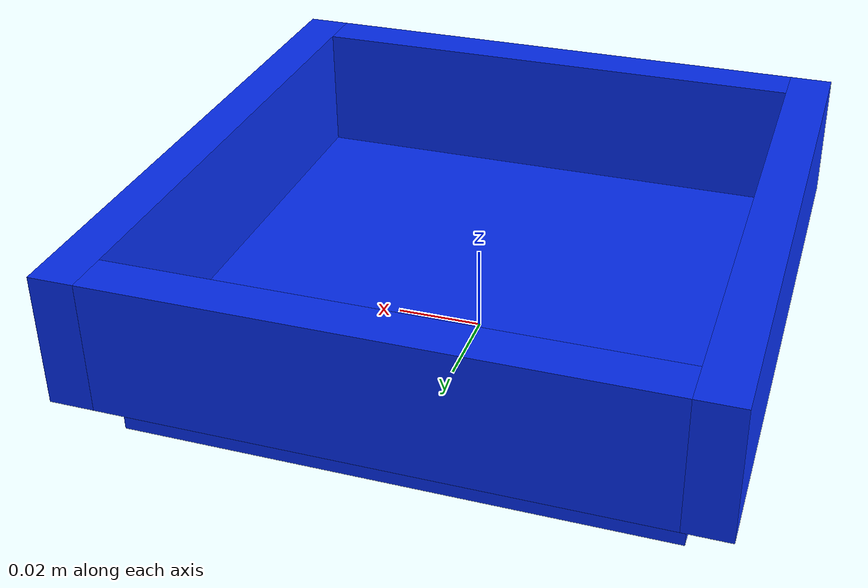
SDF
<?xml version="1.0"?>
<sdf version="1.6">
  <model name="blue_anchor_tray">
    <static>true</static>

    <link name="tray_base">
      <pose>0 0 0.006 0 0 0</pose>
      <inertial>
        <mass>0.20</mass>
        <inertia>
          <ixx>0.00055</ixx>
          <iyy>0.00055</iyy>
          <izz>0.00105</izz>
          <ixy>0</ixy>
          <ixz>0</ixz>
          <iyz>0</iyz>
        </inertia>
      </inertial>
      <collision name="collision">
        <geometry>
          <box>
            <size>0.12 0.12 0.012</size>
          </box>
        </geometry>
      </collision>
      <visual name="visual">
        <geometry>
          <box>
            <size>0.12 0.12 0.012</size>
          </box>
        </geometry>
        <material>
          <ambient>0.02 0.12 0.85 1</ambient>
          <diffuse>0.02 0.18 0.95 1</diffuse>
          <specular>0.15 0.15 0.25 1</specular>
        </material>
      </visual>
    </link>

    <link name="rim_front">
      <pose>0.065 0 0.027 0 0 0</pose>
      <collision name="collision">
        <geometry>
          <box>
            <size>0.010 0.14 0.030</size>
          </box>
        </geometry>
      </collision>
      <visual name="visual">
        <geometry>
          <box>
            <size>0.010 0.14 0.030</size>
          </box>
        </geometry>
        <material>
          <ambient>0.02 0.12 0.85 1</ambient>
          <diffuse>0.02 0.18 0.95 1</diffuse>
          <specular>0.15 0.15 0.25 1</specular>
        </material>
      </visual>
    </link>

    <link name="rim_back">
      <pose>-0.065 0 0.027 0 0 0</pose>
      <collision name="collision">
        <geometry>
          <box>
            <size>0.010 0.14 0.030</size>
          </box>
        </geometry>
      </collision>
      <visual name="visual">
        <geometry>
          <box>
            <size>0.010 0.14 0.030</size>
          </box>
        </geometry>
        <material>
          <ambient>0.02 0.12 0.85 1</ambient>
          <diffuse>0.02 0.18 0.95 1</diffuse>
          <specular>0.15 0.15 0.25 1</specular>
        </material>
      </visual>
    </link>

    <link name="rim_left">
      <pose>0 0.065 0.027 0 0 0</pose>
      <collision name="collision">
        <geometry>
          <box>
            <size>0.12 0.010 0.030</size>
          </box>
        </geometry>
      </collision>
      <visual name="visual">
        <geometry>
          <box>
            <size>0.12 0.010 0.030</size>
          </box>
        </geometry>
        <material>
          <ambient>0.02 0.12 0.85 1</ambient>
          <diffuse>0.02 0.18 0.95 1</diffuse>
          <specular>0.15 0.15 0.25 1</specular>
        </material>
      </visual>
    </link>

    <link name="rim_right">
      <pose>0 -0.065 0.027 0 0 0</pose>
      <collision name="collision">
        <geometry>
          <box>
            <size>0.12 0.010 0.030</size>
          </box>
        </geometry>
      </collision>
      <visual name="visual">
        <geometry>
          <box>
            <size>0.12 0.010 0.030</size>
          </box>
        </geometry>
        <material>
          <ambient>0.02 0.12 0.85 1</ambient>
          <diffuse>0.02 0.18 0.95 1</diffuse>
          <specular>0.15 0.15 0.25 1</specular>
        </material>
      </visual>
    </link>
  </model>
</sdf>
